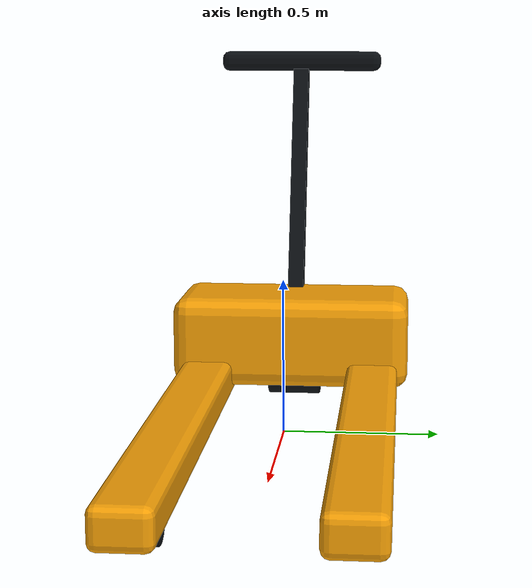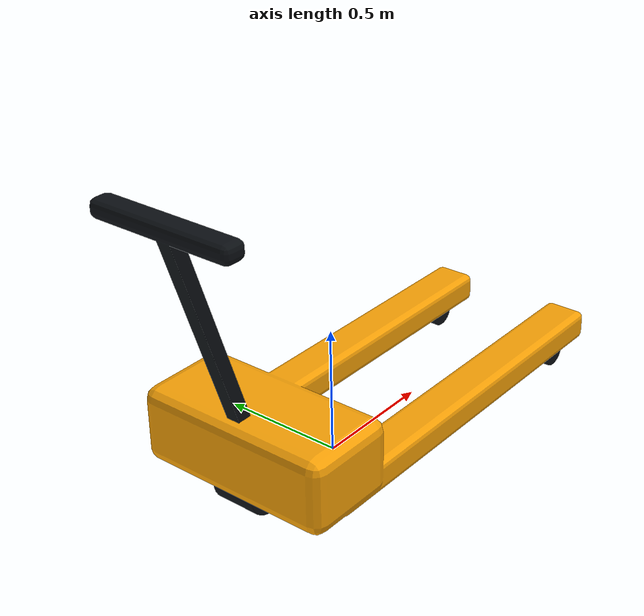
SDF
<?xml version='1.0' encoding='utf-8'?>
<sdf version="1.10">
  <model name="pallet_jack">
    <static>true</static>
    <link name="body">
      <collision name="envelope">
        <pose>0 0 0.625 0 0 0</pose>
        <geometry>
          <box>
            <size>2.9 0.85 1.25</size>
          </box>
        </geometry>
      </collision>
      <visual name="yellow">
        <geometry>
          <mesh>
            <uri>model://pallet_jack/meshes/yellow.obj</uri>
          </mesh>
        </geometry>
        <material>
          <diffuse>0.98 0.64 0.025 1</diffuse>
          <ambient>0.6859999999999999 0.44799999999999995 0.017499999999999998 1</ambient>
          <specular>0.1 0.1 0.1 1</specular>
        </material>
      </visual>
      <visual name="dark">
        <geometry>
          <mesh>
            <uri>model://pallet_jack/meshes/dark.obj</uri>
          </mesh>
        </geometry>
        <material>
          <diffuse>0.045 0.06 0.077 1</diffuse>
          <ambient>0.0315 0.041999999999999996 0.053899999999999997 1</ambient>
          <specular>0.1 0.1 0.1 1</specular>
        </material>
      </visual>
    </link>
  </model>
</sdf>
